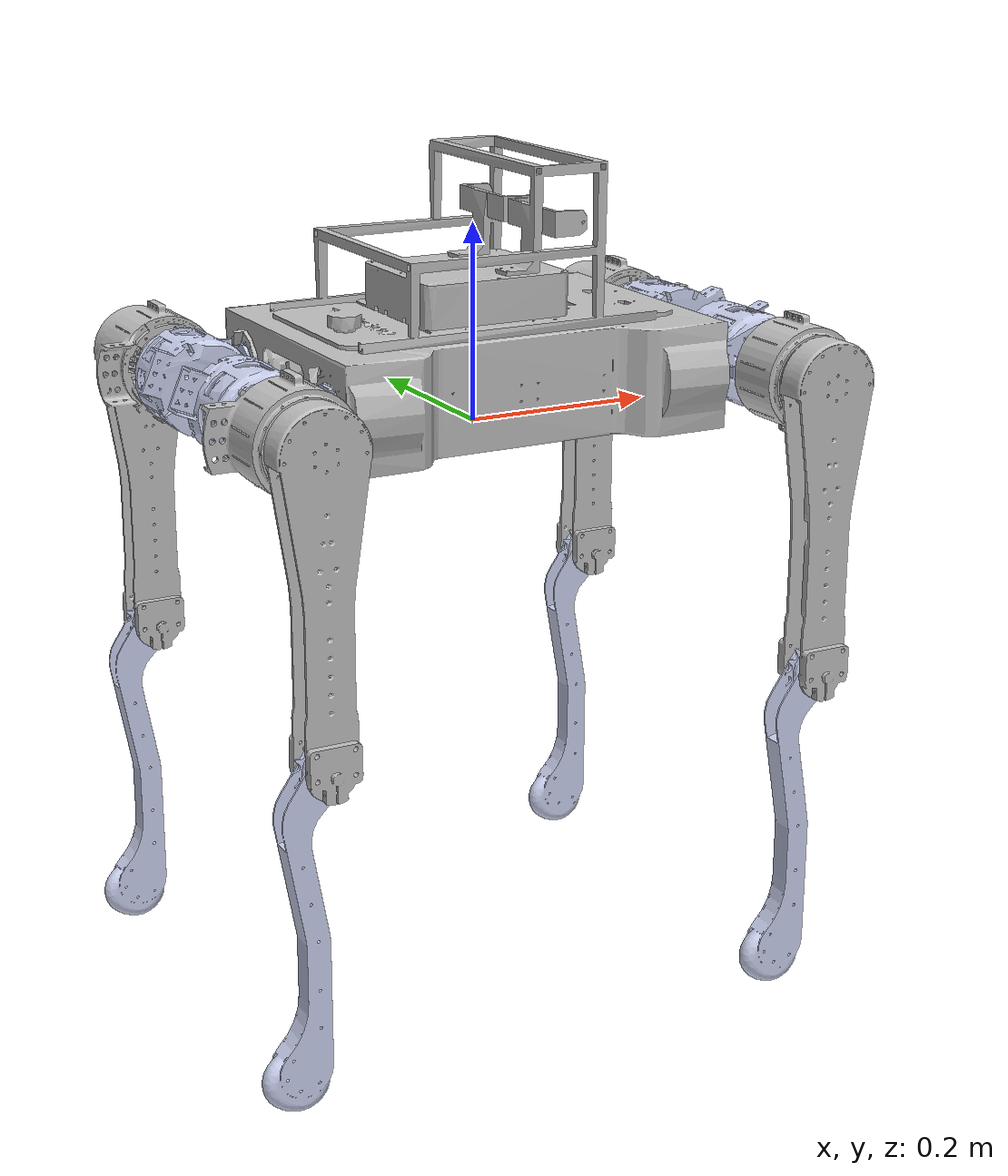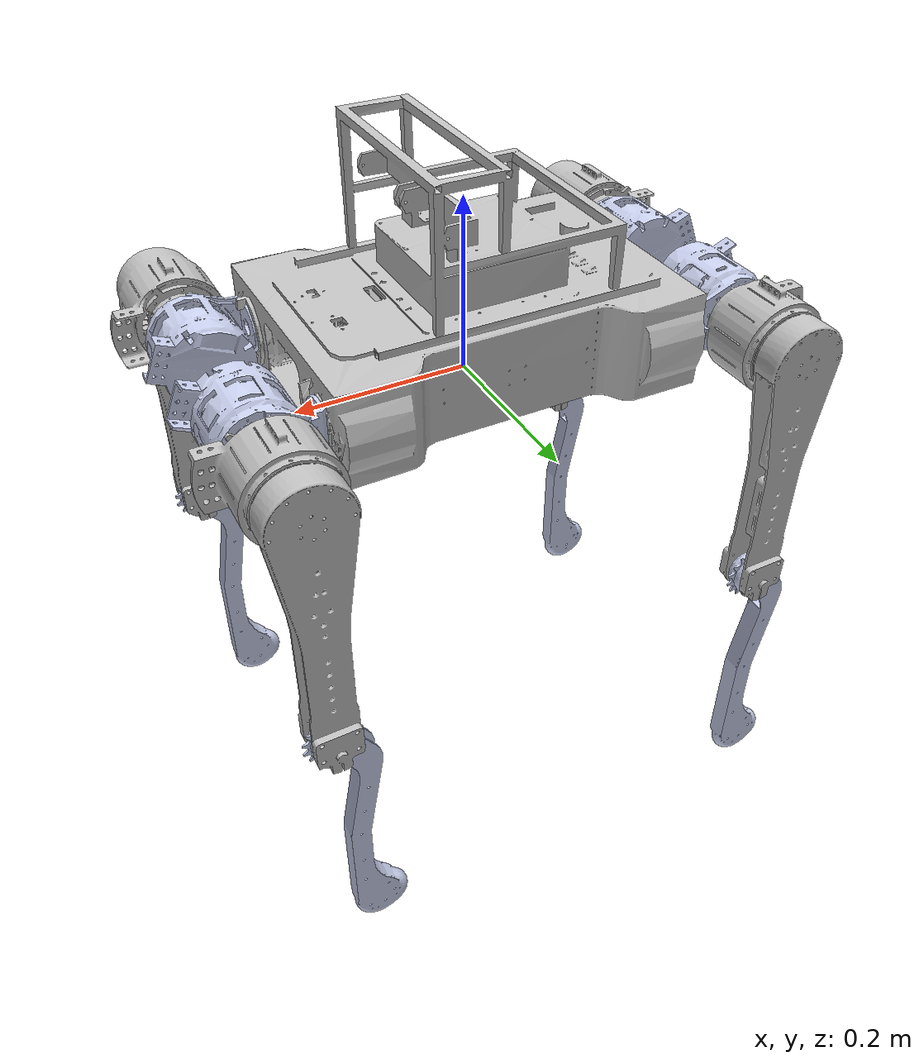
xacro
<?xml version="1.0" encoding="utf-8"?>
<robot name = 'stoch3' xmlns:xacro = 'http://www.ros.org/wiki/xacro'>

  <xacro:include filename="$(find stoch3_description)/urdf/stoch3.description.xacro" />
  <xacro:include filename="$(find stoch3_description)/urdf/transmission.xacro" />
  <xacro:include filename="$(find stoch3_description)/urdf/gazebo.xacro" />
  <xacro:include filename="$(find stoch3_description)/urdf/materials.xacro" />
  <xacro:include filename="$(find stoch3_description)/urdf/sensors.xacro" />
  <xacro:include filename="$(find stoch3_description)/urdf/foot.xacro" />

  <!-- For defining the links and joints-->
  <xacro:stoch3_description fixed="false"/>
  <xacro:robot_foot leg="fl" />
  <xacro:robot_foot leg="fr" />
  <xacro:robot_foot leg="bl" />
  <xacro:robot_foot leg="br" />

  <!-- For hardware interface and ros control-->
  <xacro:robot_transmission name="fl_abd"/>
  <xacro:robot_transmission name="fl_hip"/>
  <xacro:robot_transmission name="fl_knee"/>

  <xacro:robot_transmission name="bl_abd"/>
  <xacro:robot_transmission name="bl_hip"/>
  <xacro:robot_transmission name="bl_knee"/>

  <xacro:robot_transmission name="fr_abd"/>
  <xacro:robot_transmission name="fr_hip"/>
  <xacro:robot_transmission name="fr_knee"/>

  <xacro:robot_transmission name="br_abd"/>
  <xacro:robot_transmission name="br_hip"/>
  <xacro:robot_transmission name="br_knee"/>

  <!-- Materials and friction properties-->
  <xacro:materials name="base_link" color="White"/>

  <xacro:materials name="fl_abd" color="Grey"/>
  <xacro:materials name="bl_abd" color="Grey"/>
  <xacro:materials name="fr_abd" color="Grey"/>
  <xacro:materials name="br_abd" color="Grey"/>

  <xacro:materials name="fl_thigh" color="DarkGrey"/>
  <xacro:materials name="bl_thigh" color="DarkGrey"/>
  <xacro:materials name="fr_thigh" color="DarkGrey"/>
  <xacro:materials name="br_thigh" color="DarkGrey"/>

  <xacro:materials name="fl_shank" color="Grey"/>
  <xacro:materials name="bl_shank" color="Grey"/>
  <xacro:materials name="fr_shank" color="Grey"/>
  <xacro:materials name="br_shank" color="Grey"/>

  <!-- For miscellaneous gazebo properties like ros-control etc. -->
  <xacro:gazebo_plugin namespace="stoch3" />

  <!-- For sensors-->
  <xacro:imu id="1" x="0.0" y="0.0" z="0.005" roll="0.0" pitch="0.0" yaw="0.0" update_rate="100" gnoise="0.005"/>
</robot>

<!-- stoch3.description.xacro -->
<robot xmlns:xacro="http://www.ros.org/wiki/xacro">
  <xacro:macro name="stoch3_description" params="fixed">

    <!-- For KDL -->
    <xacro:if value="${fixed}">
      <link name="world">
      </link>

      <joint name="fixed" type="fixed">
        <parent link="world"/>
        <child link="base_link"/>
      </joint>
    </xacro:if>
    <xacro:unless value="${fixed}">
      <link name="world">
      </link>

      <joint name="world_joint" type="floating">
        <parent link="world"/>
        <child link="base_link"/>
      </joint>
    </xacro:unless>

    <link
      name="base_link">
      <inertial>
        <origin
          xyz="-0.00066643 -4.8401E-05 0.068162"
          rpy="0 0 0" />
        <mass
          value="9.7565" />
        <inertia
          ixx="0.028321"
          ixy="7.0431E-06"
          ixz="1.0437E-05"
          iyy="0.033624"
          iyz="-2.4398E-08"
          izz="0.053863" />
      </inertial>
      <visual>
        <origin
          xyz="0 0 0"
          rpy="0 0 0" />
        <geometry>
          <mesh
            filename="package://stoch3_description/meshes/base_link.STL" />
        </geometry>
        <material
          name="">
          <color
            rgba="0.75294 0.75294 0.75294 1" />
        </material>
      </visual>
      <collision>
        <origin
          xyz="0 0 0"
          rpy="0 0 0" />
        <geometry>
          <mesh
            filename="package://stoch3_description/meshes/base_link.STL" />
        </geometry>
      </collision>
    </link>
    <link
      name="fl_abd_link">
      <inertial>
        <origin
          xyz="0.061349 -0.019504 -7.6667E-06"
          rpy="0 0 0" />
        <mass
          value="0.94517" />
        <inertia
          ixx="0.00061416"
          ixy="5.7906E-07"
          ixz="-3.8412E-06"
          iyy="0.0010243"
          iyz="-1.6902E-06"
          izz="0.00060713" />
      </inertial>
      <visual>
        <origin
          xyz="0 0 0"
          rpy="0 0 0" />
        <geometry>
          <mesh
            filename="package://stoch3_description/meshes/fl_abd_link.STL" />
        </geometry>
        <material
          name="">
          <color
            rgba="0.79216 0.81961 0.93333 1" />
        </material>
      </visual>
      <collision>
        <origin
          xyz="0 0 0"
          rpy="0 0 0" />
        <geometry>
          <mesh
            filename="package://stoch3_description/meshes/fl_abd_link.STL" />
        </geometry>
      </collision>
    </link>
    <joint
      name="fl_abd_joint"
      type="revolute">
      <origin
        xyz="0.206917503877324 0.101500000000002 0.0540300000000024"
        rpy="0 0 0" />
      <parent
        link="base_link" />
      <child
        link="fl_abd_link" />
      <axis
        xyz="1 0 0" />
      <limit
        lower="-1.5708"
        upper="1.5708"
        effort="100"
        velocity="100" />
    </joint>
    <link
      name="fl_thigh_link">
      <inertial>
        <origin
          xyz="0.0014376 0.077483 -0.055275"
          rpy="0 0 0" />
        <mass
          value="2.4957" />
        <inertia
          ixx="0.0049396"
          ixy="4.7834E-05"
          ixz="-3.2241E-06"
          iyy="0.0054131"
          iyz="-1.5857E-06"
          izz="0.0011512" />
      </inertial>
      <visual>
        <origin
          xyz="0 0 0"
          rpy="0 0 0" />
        <geometry>
          <mesh
            filename="package://stoch3_description/meshes/fl_thigh_link.STL" />
        </geometry>
        <material
          name="">
          <color
            rgba="0.75294 0.75294 0.75294 1" />
        </material>
      </visual>
      <collision>
        <origin
          xyz="0 0 0"
          rpy="0 0 0" />
        <geometry>
          <mesh
            filename="package://stoch3_description/meshes/fl_thigh_link.STL" />
        </geometry>
      </collision>
    </link>
    <joint
      name="fl_hip_joint"
      type="revolute">
      <origin
        xyz="0.06378709521538 0.0139999999999987 0"
        rpy="0 -3.14584042145611E-05 0" />
      <parent
        link="fl_abd_link" />
      <child
        link="fl_thigh_link" />
      <axis
        xyz="0 1 0" />
      <limit
        lower="-1.57078"
        upper="3.14159"
        effort="100"
        velocity="100" />
    </joint>
    <link
      name="fl_shank_link">
      <inertial>
        <origin
          xyz="-0.014616 -6.6962E-07 -0.11828"
          rpy="0 0 0" />
        <mass
          value="0.37918" />
        <inertia
          ixx="0.0021646"
          ixy="5.617E-09"
          ixz="-4.4468E-05"
          iyy="0.0022225"
          iyz="3.9894E-08"
          izz="6.6686E-05" />
      </inertial>
      <visual>
        <origin
          xyz="0 0 0"
          rpy="0 0 0" />
        <geometry>
          <mesh
            filename="package://stoch3_description/meshes/fl_shank_link.STL" />
        </geometry>
        <material
          name="">
          <color
            rgba="0.79216 0.81961 0.93333 1" />
        </material>
      </visual>
      <collision>
        <origin
          xyz="0 0 0"
          rpy="0 0 0" />
        <geometry>
          <mesh
            filename="package://stoch3_description/meshes/fl_shank_link.STL" />
        </geometry>
      </collision>
    </link>
    <joint
      name="fl_knee_joint"
      type="revolute">
      <origin
        xyz="0 0.111399999999998 -0.296999999853041"
        rpy="0 3.14584042149928E-05 0" />
      <parent
        link="fl_thigh_link" />
      <child
        link="fl_shank_link" />
      <axis
        xyz="0 1 0" />
      <limit
        lower="-3.14159"
        upper="0"
        effort="100"
        velocity="100" />
    </joint>
    <link
      name="fr_abd_link">
      <inertial>
        <origin
          xyz="0.06156 0.019504 -0.00021624"
          rpy="0 0 0" />
        <mass
          value="0.94517" />
        <inertia
          ixx="0.00061326"
          ixy="3.2241E-07"
          ixz="1.5152E-08"
          iyy="0.0010243"
          iyz="-3.8552E-06"
          izz="0.00060803" />
      </inertial>
      <visual>
        <origin
          xyz="0 0 0"
          rpy="0 0 0" />
        <geometry>
          <mesh
            filename="package://stoch3_description/meshes/fr_abd_link.STL" />
        </geometry>
        <material
          name="">
          <color
            rgba="0.79216 0.81961 0.93333 1" />
        </material>
      </visual>
      <collision>
        <origin
          xyz="0 0 0"
          rpy="0 0 0" />
        <geometry>
          <mesh
            filename="package://stoch3_description/meshes/fr_abd_link.STL" />
        </geometry>
      </collision>
    </link>
    <joint
      name="fr_abd_joint"
      type="revolute">
      <origin
        xyz="0.206925357517166 -0.101499999999999 0.0540300000000003"
        rpy="0 0 0" />
      <parent
        link="base_link" />
      <child
        link="fr_abd_link" />
      <axis
        xyz="1 0 0" />
      <limit
        lower="-1.5708"
        upper="1.5708"
        effort="100"
        velocity="100" />
    </joint>
    <link
      name="fr_thigh_link">
      <inertial>
        <origin
          xyz="0.00144107858196152 -0.07748346487516 -0.0551703662273829"
          rpy="0 0 0" />
        <mass
          value="2.49567510872212" />
        <inertia
          ixx="0.00493964200419569"
          ixy="-4.78342957937469E-05"
          ixz="3.2241369041665E-06"
          iyy="0.00541305231980369"
          iyz="-1.61934782864799E-06"
          izz="0.00115115548345638" />
      </inertial>
      <visual>
        <origin
          xyz="0 0 0"
          rpy="0 0 0" />
        <geometry>
          <mesh
            filename="package://stoch3_description/meshes/fr_thigh_link.STL" />
        </geometry>
        <material
          name="">
          <color
            rgba="0.752941176470588 0.752941176470588 0.752941176470588 1" />
        </material>
      </visual>
      <collision>
        <origin
          xyz="0 0 0"
          rpy="0 0 0" />
        <geometry>
          <mesh
            filename="package://stoch3_description/meshes/fr_thigh_link.STL" />
        </geometry>
      </collision>
    </link>
    <joint
      name="fr_hip_joint"
      type="revolute">
      <origin
        xyz="0.06377924157554 -0.0139999999999988 0"
        rpy="0 3.145840420901E-05 0" />
      <parent
        link="fr_abd_link" />
      <child
        link="fr_thigh_link" />
      <axis
        xyz="0 1 0" />
      <limit
        lower="-1.57078"
        upper="3.14159"
        effort="100"
        velocity="100" />
    </joint>
    <link
      name="fr_shank_link">
      <inertial>
        <origin
          xyz="-0.014616 -6.6962E-07 -0.11828"
          rpy="0 0 0" />
        <mass
          value="0.37918" />
        <inertia
          ixx="0.0021646"
          ixy="5.617E-09"
          ixz="-4.4468E-05"
          iyy="0.0022225"
          iyz="3.9894E-08"
          izz="6.6686E-05" />
      </inertial>
      <visual>
        <origin
          xyz="0 0 0"
          rpy="0 0 0" />
        <geometry>
          <mesh
            filename="package://stoch3_description/meshes/fr_shank_link.STL" />
        </geometry>
        <material
          name="">
          <color
            rgba="0.79216 0.81961 0.93333 1" />
        </material>
      </visual>
      <collision>
        <origin
          xyz="0 0 0"
          rpy="0 0 0" />
        <geometry>
          <mesh
            filename="package://stoch3_description/meshes/fr_shank_link.STL" />
        </geometry>
      </collision>
    </link>
    <joint
      name="fr_knee_joint"
      type="revolute">
      <origin
        xyz="0 -0.111599999999999 -0.29699999985303"
        rpy="0 -3.14584042085783E-05 0" />
      <parent
        link="fr_thigh_link" />
      <child
        link="fr_shank_link" />
      <axis
        xyz="0 1 0" />
      <limit
        lower="-3.14159"
        upper="0"
        effort="100"
        velocity="100" />
    </joint>
    <link
      name="bl_abd_link">
      <inertial>
        <origin
          xyz="0.030793 -0.019504 -0.00042262"
          rpy="0 0 0" />
        <mass
          value="0.94517" />
        <inertia
          ixx="0.00061091"
          ixy="-9.6216E-07"
          ixz="-1.2691E-06"
          iyy="0.0010243"
          iyz="1.7068E-06"
          izz="0.00061038" />
      </inertial>
      <visual>
        <origin
          xyz="0 0 0"
          rpy="0 0 0" />
        <geometry>
          <mesh
            filename="package://stoch3_description/meshes/bl_abd_link.STL" />
        </geometry>
        <material
          name="">
          <color
            rgba="0.79216 0.81961 0.93333 1" />
        </material>
      </visual>
      <collision>
        <origin
          xyz="0 0 0"
          rpy="0 0 0" />
        <geometry>
          <mesh
            filename="package://stoch3_description/meshes/bl_abd_link.STL" />
        </geometry>
      </collision>
    </link>
    <joint
      name="bl_abd_joint"
      type="revolute">
      <origin
        xyz="-0.299402452130055 0.101499999999997 0.0540300000000009"
        rpy="0 0 0" />
      <parent
        link="base_link" />
      <child
        link="bl_abd_link" />
      <axis
        xyz="1 0 0" />
      <limit
        lower="-1.5708"
        upper="1.5708"
        effort="100"
        velocity="100" />
    </joint>
    <link
      name="bl_thigh_link">
      <inertial>
        <origin
          xyz="-0.00144107858108192 0.0774834648849106 -0.0551703662338023"
          rpy="0 0 0" />
        <mass
          value="2.49567510818258" />
        <inertia
          ixx="0.00493964200383586"
          ixy="-4.78342957989956E-05"
          ixz="-3.22413680518202E-06"
          iyy="0.0054130523194199"
          iyz="1.61934780851157E-06"
          izz="0.00115115548343042" />
      </inertial>
      <visual>
        <origin
          xyz="0 0 0"
          rpy="0 0 0" />
        <geometry>
          <mesh
            filename="package://stoch3_description/meshes/bl_thigh_link.STL" />
        </geometry>
        <material
          name="">
          <color
            rgba="0.752941176470588 0.752941176470588 0.752941176470588 1" />
        </material>
      </visual>
      <collision>
        <origin
          xyz="0 0 0"
          rpy="0 0 0" />
        <geometry>
          <mesh
            filename="package://stoch3_description/meshes/bl_thigh_link.STL" />
        </geometry>
      </collision>
    </link>
    <joint
      name="bl_hip_joint"
      type="revolute">
      <origin
        xyz="0.0286978530373435 0.0139999999999997 0"
        rpy="0 -3.14584042145611E-05 0" />
      <parent
        link="bl_abd_link" />
      <child
        link="bl_thigh_link" />
      <axis
        xyz="0 1 0" />
      <limit
        lower="-1.57078"
        upper="3.14159"
        effort="100"
        velocity="100" />
    </joint>
    <link
      name="bl_shank_link">
      <inertial>
        <origin
          xyz="-0.014616 -6.6962E-07 -0.11828"
          rpy="0 0 0" />
        <mass
          value="0.37918" />
        <inertia
          ixx="0.0021646"
          ixy="5.617E-09"
          ixz="-4.4468E-05"
          iyy="0.0022225"
          iyz="3.9894E-08"
          izz="6.6686E-05" />
      </inertial>
      <visual>
        <origin
          xyz="0 0 0"
          rpy="0 0 0" />
        <geometry>
          <mesh
            filename="package://stoch3_description/meshes/bl_shank_link.STL" />
        </geometry>
        <material
          name="">
          <color
            rgba="0.79216 0.81961 0.93333 1" />
        </material>
      </visual>
      <collision>
        <origin
          xyz="0 0 0"
          rpy="0 0 0" />
        <geometry>
          <mesh
            filename="package://stoch3_description/meshes/bl_shank_link.STL" />
        </geometry>
      </collision>
    </link>
    <joint
      name="bl_knee_joint"
      type="revolute">
      <origin
        xyz="0 0.111599999999496 -0.29699999985304"
        rpy="0 3.14584042094417E-05 0" />
      <parent
        link="bl_thigh_link" />
      <child
        link="bl_shank_link" />
      <axis
        xyz="0 1 0" />
      <limit
        lower="-3.14159"
        upper="0"
        effort="100"
        velocity="100" />
    </joint>
    <link
      name="br_abd_link">
      <inertial>
        <origin
          xyz="0.031108 0.019504 -1.7708E-05"
          rpy="0 0 0" />
        <mass
          value="0.94517" />
        <inertia
          ixx="0.00061475"
          ixy="8.7419E-07"
          ixz="3.1106E-06"
          iyy="0.0010243"
          iyz="1.7938E-06"
          izz="0.00060654" />
      </inertial>
      <visual>
        <origin
          xyz="0 0 0"
          rpy="0 0 0" />
        <geometry>
          <mesh
            filename="package://stoch3_description/meshes/br_abd_link.STL" />
        </geometry>
        <material
          name="">
          <color
            rgba="0.79216 0.81961 0.93333 1" />
        </material>
      </visual>
      <collision>
        <origin
          xyz="0 0 0"
          rpy="0 0 0" />
        <geometry>
          <mesh
            filename="package://stoch3_description/meshes/br_abd_link.STL" />
        </geometry>
      </collision>
    </link>
    <joint
      name="br_abd_joint"
      type="revolute">
      <origin
        xyz="-0.299402452130055 -0.101500000000005 0.0540300000000005"
        rpy="0 0 0" />
      <parent
        link="base_link" />
      <child
        link="br_abd_link" />
      <axis
        xyz="1 0 0" />
      <limit
        lower="-1.5708"
        upper="1.5708"
        effort="100"
        velocity="100" />
    </joint>
    <link
      name="br_thigh_link">
      <inertial>
        <origin
          xyz="-0.00150303818321485 -0.0774834645949825 -0.0552213173300917"
          rpy="0 0 0" />
        <mass
          value="2.49567512655825" />
        <inertia
          ixx="0.0049362160738861"
          ixy="4.96261951245898E-05"
          ixz="2.5269174510805E-06"
          iyy="0.00541305233737715"
          iyz="1.18125628096648E-07"
          izz="0.00115458143484649" />
      </inertial>
      <visual>
        <origin
          xyz="0 0 0"
          rpy="0 0 0" />
        <geometry>
          <mesh
            filename="package://stoch3_description/meshes/br_thigh_link.STL" />
        </geometry>
        <material
          name="">
          <color
            rgba="0.752941176470588 0.752941176470588 0.752941176470588 1" />
        </material>
      </visual>
      <collision>
        <origin
          xyz="0 0 0"
          rpy="0 0 0" />
        <geometry>
          <mesh
            filename="package://stoch3_description/meshes/br_thigh_link.STL" />
        </geometry>
      </collision>
    </link>
    <joint
      name="br_hip_joint"
      type="revolute">
      <origin
        xyz="0.0286978530373517 -0.0139999999999956 0"
        rpy="0 3.14584042201122E-05 0" />
      <parent
        link="br_abd_link" />
      <child
        link="br_thigh_link" />
      <axis
        xyz="0 1 0" />
      <limit
        lower="-1.57078"
        upper="3.14159"
        effort="100"
        velocity="100" />
    </joint>
    <link
      name="br_shank_link">
      <inertial>
        <origin
          xyz="-0.014616 -6.6962E-07 -0.11828"
          rpy="0 0 0" />
        <mass
          value="0.37918" />
        <inertia
          ixx="0.0021646"
          ixy="5.617E-09"
          ixz="-4.4468E-05"
          iyy="0.0022225"
          iyz="3.9894E-08"
          izz="6.6686E-05" />
      </inertial>
      <visual>
        <origin
          xyz="0 0 0"
          rpy="0 0 0" />
        <geometry>
          <mesh
            filename="package://stoch3_description/meshes/br_shank_link.STL" />
        </geometry>
        <material
          name="">
          <color
            rgba="0.79216 0.81961 0.93333 1" />
        </material>
      </visual>
      <collision>
        <origin
          xyz="0 0 0"
          rpy="0 0 0" />
        <geometry>
          <mesh
            filename="package://stoch3_description/meshes/br_shank_link.STL" />
        </geometry>
      </collision>
    </link>
    <joint
      name="br_knee_joint"
      type="revolute">
      <origin
        xyz="0 -0.111600000000005 -0.296999999853014"
        rpy="0 -3.14584042141294E-05 0" />
      <parent
        link="br_thigh_link" />
      <child
        link="br_shank_link" />
      <axis
        xyz="0 1 0" />
      <limit
        lower="-3.14159"
        upper="0"
        effort="100"
        velocity="100" />
    </joint>
  </xacro:macro>
</robot>

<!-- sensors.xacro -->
<robot xmlns:xacro="http://www.ros.org/wiki/xacro">

    <xacro:macro name="imu" params="id x y z roll pitch yaw update_rate gnoise">

        <link name="imu_link_${id}">
            <inertial>
                <mass value="0.001"/>
                <origin rpy="0 0 0" xyz="0 0 0"/>
                <inertia ixx="1e-09" ixy="0.0" ixz="0.0" iyy="1e-09" iyz="0.0" izz="1e-09"/>
            </inertial>
            <visual>
                <origin xyz="0 0 0" rpy="0 0 0"/>
                <geometry>
                    <box size="0.005 0.005 0.005" />
                </geometry>
                <material name="">
                    <color rgba="0.6 0.8 0.1 1" />
                </material>
            </visual>
        </link>

        <joint name="imu_joint_${id}" type="fixed">
            <parent link="base_link"/>
            <child link="imu_link_${id}"/>
            <origin xyz="${x} ${y} ${z}" rpy="${roll} ${pitch} ${yaw}"/>
        </joint>

        <gazebo>
            <plugin filename="libhector_gazebo_ros_imu.so" name="imu_${id}_controller">
                <updateRate>${update_rate}</updateRate>
                <bodyName>imu_link_${id}</bodyName>
                <topicName>sensors/imu_${id}</topicName>
                <accelDrift>0.005 0.005 0.005</accelDrift>
                <accelGaussianNoise>${gnoise} ${gnoise} ${gnoise}</accelGaussianNoise>
                <rateDrift>0.005 0.005 0.005 </rateDrift>
                <rateGaussianNoise>${gnoise} ${gnoise} ${gnoise}</rateGaussianNoise>
                <headingDrift>0.005</headingDrift>
                <headingGaussianNoise>${gnoise}</headingGaussianNoise>
            </plugin>

            <material>Gazebo/Yellow</material>
        </gazebo>

    </xacro:macro>

    <xacro:macro name='tof' params="id x y z roll pitch yaw update_rate gnoise">

        <!-- VL53L0X ToF sensor-->
        <link name="tof_link_${id}">
            <inertial>
                <mass value="0.001"/>
                <origin xyz="0 0 0"/>
                <inertia ixx="1e-09" ixy="0" ixz="0" iyy="1e-09" iyz="0" izz="1e-09"/>
            </inertial>
            <visual>
                <origin xyz="0 0 0" rpy="0 0 0"/>
                <geometry>
                    <box size="0.005 0.015 0.005" />
                </geometry>
                <material name="Red">
                    <color rgba="1 0.2 0.2 1" />
                </material>
            </visual>
        </link>

        <joint name="tof_joint_${id}" type="fixed">
            <origin xyz="${x} ${y} ${z}" rpy="${roll} ${pitch} ${yaw}"/>
            <parent link="base_link"/>
            <child link="tof_link_${id}"/>
        </joint>

        <gazebo reference="tof_link_${id}">
            <sensor type="ray" name="tof_sensor_${id}">
                <visualize>true</visualize>
                <update_rate>${update_rate}</update_rate>
                <always_on>1</always_on>
                <ray>
                    <scan>
                        <horizontal>
                            <samples>10</samples>
                            <resolution>1</resolution>
                            <min_angle>-0.02618</min_angle>
                            <max_angle>0.02618</max_angle>
                        </horizontal>
                        <vertical>
                            <samples>10</samples>
                            <resolution>1</resolution>
                            <min_angle>-0.02618</min_angle>
                            <max_angle>0.02618</max_angle>
                        </vertical>
                    </scan>
                    <range>
                        <min>0.002</min>
                        <max>2</max>
                        <resolution>0.005</resolution>
                    </range>
                </ray>
                <plugin name="tof_plugin_${id}" filename="libgazebo_ros_range.so">
                    <topicName>sensors/range_tof_${id}</topicName>
                    <frameName>frame_range_tof_${id}</frameName>
                    <gaussianNoise>${gnoise}</gaussianNoise>
                    <updateRate>${update_rate}</updateRate>
                    <radiation>light</radiation>
                    <fov>0.43</fov>
                </plugin>
            </sensor>

            <material>Gazebo/Red</material>

        </gazebo>

    </xacro:macro>

    <!-- Contact Sensor Plugins -->
    <xacro:macro name="contact_sensor" params="leg_name update_rate">
        <gazebo reference="${leg_name}_shank_link">
            <sensor name="${leg_name}_link_contact_sensor" type="contact">
                <always_on>true</always_on>
                <update_rate>${update_rate}</update_rate>
                <contact>
                    <collision>${leg_name}_shank_link_collision</collision>
                </contact>
                <plugin name="gazebo_ros_bumper_controller" filename="libgazebo_ros_bumper.so">
                    <bumperTopicName>${leg_name}_contact</bumperTopicName>
                    <frameName>${leg_name}_shank_link</frameName>
                </plugin>
            </sensor>
        </gazebo>
    </xacro:macro>

</robot>

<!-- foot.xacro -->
<robot xmlns:xacro="http://www.ros.org/wiki/xacro">

    <xacro:macro name="robot_foot" params="leg">

    <link name="${leg}_foot_link" />

    <joint name="${leg}_ankle_joint" type="fixed">
      <parent link="${leg}_shank_link"/>
      <child link="${leg}_foot_link"/>
      <origin xyz="0 0 -0.3" rpy="0 0 0" />
    </joint>

    </xacro:macro>

</robot>
